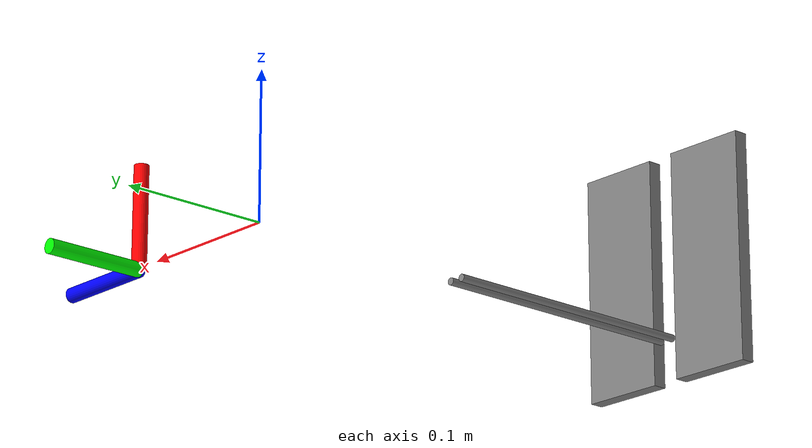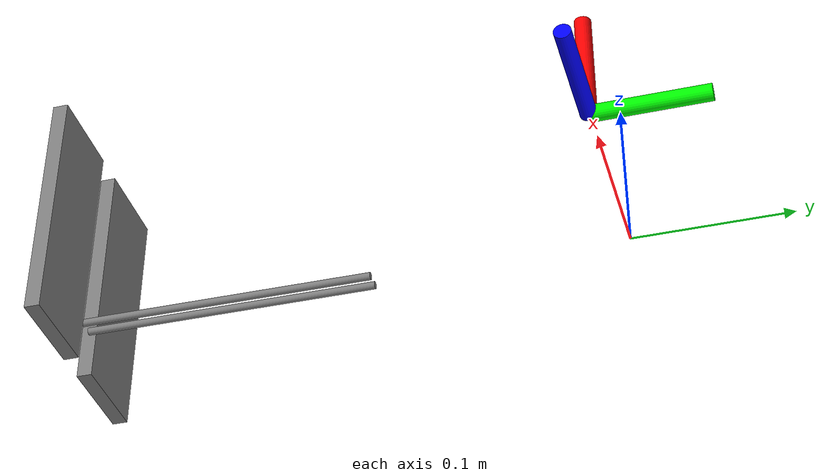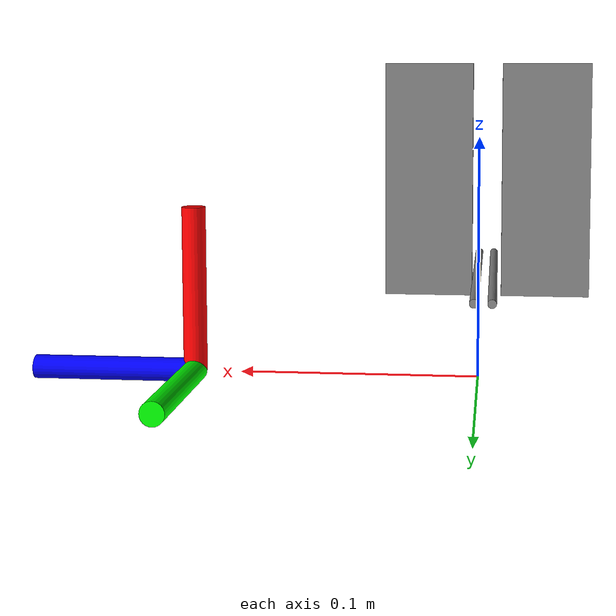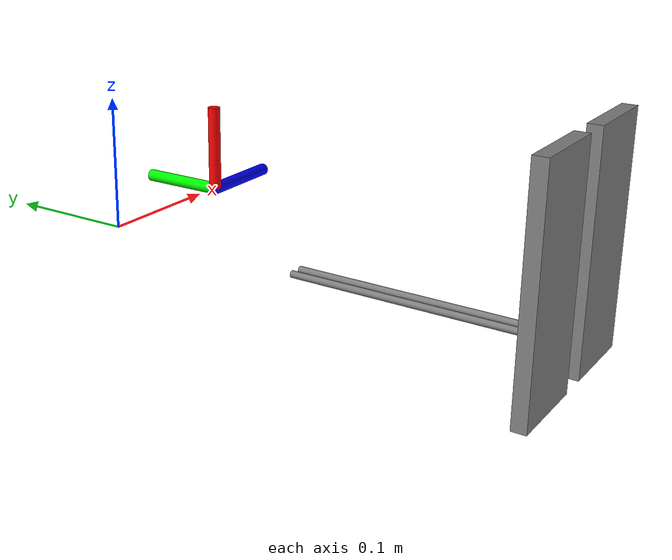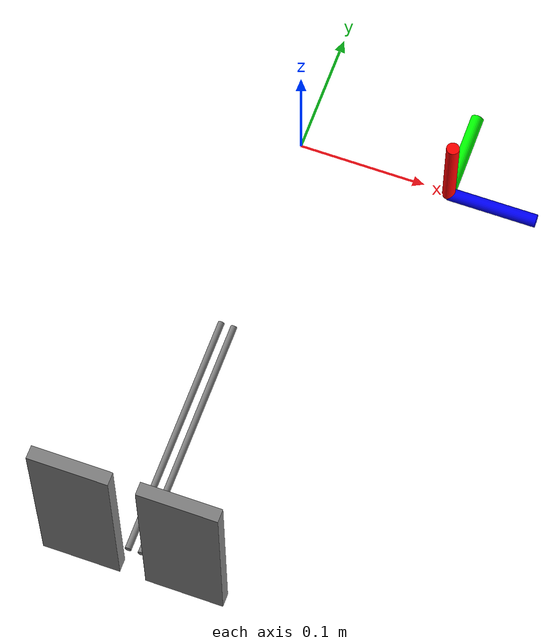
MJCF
<mujoco model="testPassiveWalker">

    <compiler inertiafromgeom='true' angle='degree'/>
    <option gravity='0 0 -9.81'/>
    <asset>
		<!-- Sets sky rendering
		-->
        <texture type="skybox" builtin="gradient" width="100" height="100" rgb1="1 1 1"
            rgb2="1 1 1"/>
		<!-- Not clear to me where this is used yet
		-->
        <texture name="texgeom" type="cube" builtin="flat" mark="cross" width="127" height="1278"
            rgb1="0.1 0.8 0.1" rgb2="0.8 0.6 0.4" markrgb="1 1 1" random="0.01"/>
		<!-- Sets floor rendering
		-->
        <texture name="texplane" type="2d" builtin="checker" rgb1=".2 .3 .4" rgb2=".1 0.15 0.2"
            width="1000" height="1000"/>
		<!-- Create materials based on textures above
		-->
        <material name='MatPlane' reflectance='0.5' texture="texplane"/>
        <material name='geom' texture="texgeom" texuniform="true"/>
    </asset>

	<default>
    <site type="sphere" rgba=".2 .2 .5 .1" size="5e-3"/>
        <camera pos='1 1 1' euler='90 0 0'/>
	</default>

	<worldbody>
        <light directional='false' diffuse='.8 .8 .8' specular='0.3 0.3 0.3' pos='0 0 40.5' dir='0 0 -1'/>

        <body name='axes' pos='20e-3 -1e-3 0'>
          <geom name='x' type='cylinder' fromto='100e-3 0 0 170e-3 0 0' size='5e-3' rgba='0 0 1 1'/>
          <geom name='y' type='cylinder' fromto='100e-3 0 0 100e-3 70e-3 0' size='5e-3' rgba='0 1 0 1'/>
          <geom name='z' type='cylinder' fromto='100e-3 0 0 100e-3 0 70e-3' size='5e-3' rgba='1 0 0 1'/>
        </body>

        <body name='left_wheel' pos='0 -172.5e-3 0' euler='0 0 0'>
          <geom name='left_spoke' density='5e3' type='cylinder' size='2.5e-3 96.25e-3' pos = '5e-3 -86.25e-3 0' euler='90 0 0'/>
          <joint name='left_wheel' type='hinge' axis='1 0 0'  pos='0 0 0' frictional='true' frictionloss='1e-1' />
          <body name='left_foothold' pos='40e-3 -185e-3 0' euler='0 0 0'>
            <geom name='left_foothold' density='5e3'  type='box' size='80e-3 5e-3 30e-3' pos='0 0 50e-3' euler='0 90 0'/>
            <joint name='left_pedal' type='hinge' axis='1 0 0' pos='0 0 0' frictional='true' frictionloss='1e-1' />
            <site name="left_foothold_bottom" pos='0 0 0'/>
            <site name="left_foothold_top"    pos='0 0 74e-3'/>
          </body>
        </body>

        <body name='right_wheel' pos='0 -172.5e-3 0' euler='0 0 0'>
          <geom name='right_spoke' density='5e3' type='cylinder' size='2.5e-3 96.25e-3' pos = '-5e-3 -86.25e-3 0' euler='90 0 0'/>
          <joint name='right_wheel' type='hinge' axis='1 0 0'  pos='0 0 0' frictional='true' frictionloss='1e-1' />
          <body name='right_foothold' pos='-40e-3 -185e-3 0' euler='0 0 0'>
            <geom name='right_foothold' density='5e3'  type='box' size='80e-3 5e-3 30e-3' pos='0 0 50e-3' euler='0 90 0'/>
            <joint name='right_pedal' type='hinge' axis='1 0 0' pos='0 0 0' frictional='true' frictionloss='1e-1' />
            <site name="right_foothold_bottom" pos='0 0 0'/>
            <site name="right_foothold_top"    pos='0 0 74e-3'/>
          </body>
        </body>

	</worldbody>

<actuator>

  <motor name='right_wheel' gear='1' joint='right_wheel' ctrllimited='true' ctrlrange='-1 1' />
  <motor name='left_wheel' gear='1' joint='left_wheel' ctrllimited='true' ctrlrange='-1 1' />

</actuator>

</mujoco>
